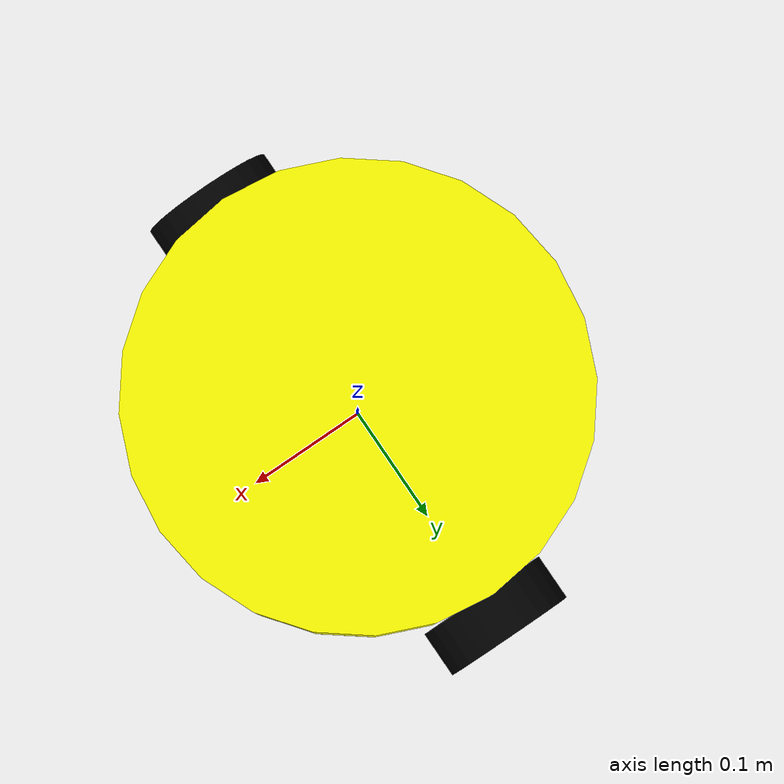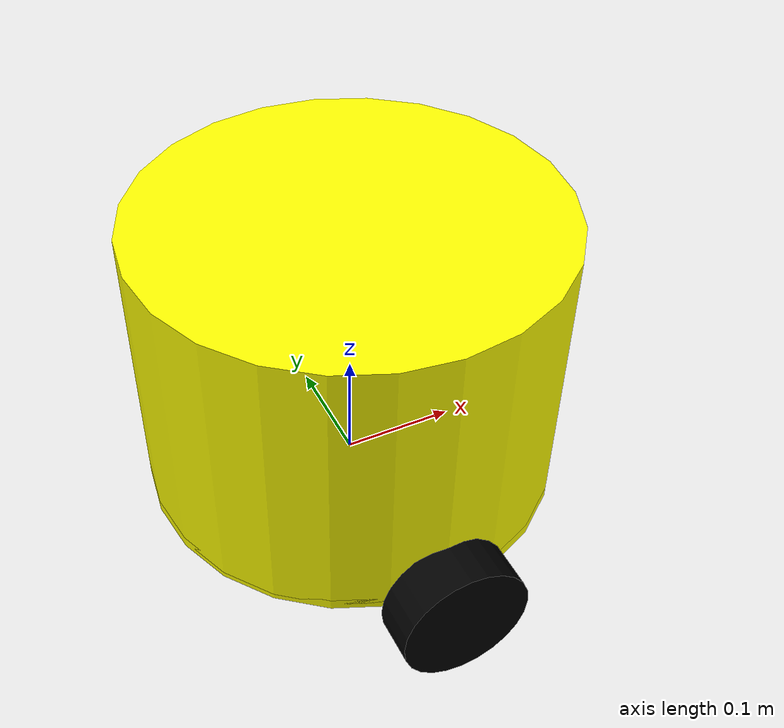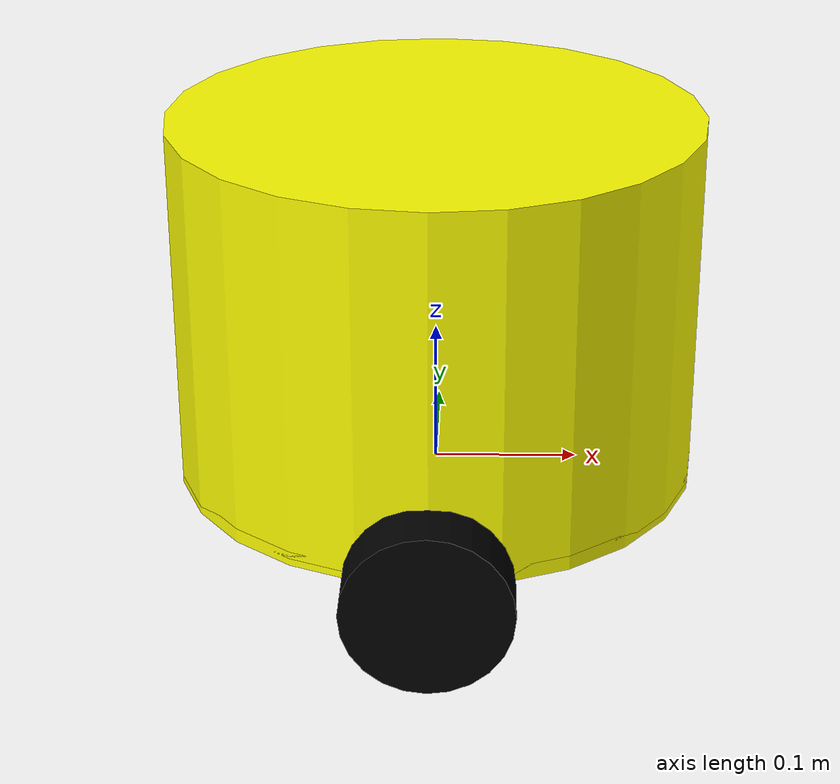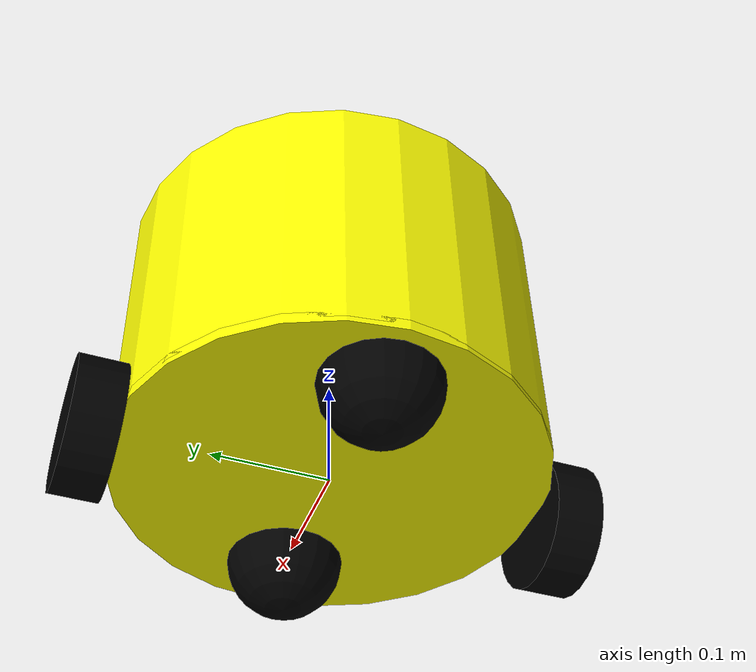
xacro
<?xml version="1.0"?>
<robot name="robot_core" xmlns:xacro="http://www.ros.org/wiki/xacro">

  <!-- Include inertial macros -->
  <!-- Ensure that inertial_macros.xacro is present and correctly defined -->
  <xacro:include filename="inertial_macros.xacro"/>

  <!-- Define colors -->
  <material name="yellow">
    <color rgba="1 1 0 1"/>
  </material>
  <material name="black">
    <color rgba="0 0 0 1"/>
  </material>

  <!-- Define the base link -->
  <link name="base_link">
    <visual>
      <geometry>
        <cylinder radius="0.1815" length="0.01"/>
      </geometry>
      <material name="yellow"/>
      <origin xyz="0 0 0.005" rpy="0 0 0"/>
    </visual>
    <collision>
      <geometry>
        <cylinder radius="0.1815" length="0.01"/>
      </geometry>
      <origin xyz="0 0 0.005" rpy="0 0 0"/>
    </collision>
    <inertial>
      <mass value="1"/>
      <inertia ixx="0.001" ixy="0" ixz="0" iyy="0.001" iyz="0" izz="0.001"/>
    </inertial>
  </link>
  <gazebo reference="base_link">
    <material>Gazebo/Yellow</material>
  </gazebo>

  <!-- Define the chassis link -->
  <link name="chassis_link">
    <visual>
      <geometry>
        <cylinder radius="0.1815" length="0.25"/>
      </geometry>
      <material name="yellow"/>
      <origin xyz="0 0 0.125" rpy="0 0 0"/>
    </visual>
    <collision>
      <geometry>
        <cylinder radius="0.1815" length="0.25"/>
      </geometry>
      <origin xyz="0 0 0.125" rpy="0 0 0"/>
    </collision>
    <inertial>
      <mass value="5"/>
      <inertia ixx="0.015" ixy="0" ixz="0" iyy="0.015" iyz="0" izz="0.015"/>
    </inertial>
  </link>
  <gazebo reference="chassis_link">
    <material>Gazebo/Yellow</material>
  </gazebo>

  <!-- Joint between base_link and chassis_link -->
  <joint name="base_to_chassis" type="fixed">
    <parent link="base_link"/>
    <child link="chassis_link"/>
    <origin xyz="0 0 0.005" rpy="0 0 0"/>
  </joint>

  <!-- Left wheel -->
  <joint name="left_wheel_joint" type="continuous">
    <parent link="base_link"/>
    <child link="left_wheel"/>
    <origin xyz="0 0.198 0" rpy="-${pi/2}  0 0"/>
    <axis xyz="0 0 1"/>
  </joint>

  <link name="left_wheel">
    <visual>
      <geometry>
        <cylinder radius="0.056" length="0.04"/>
      </geometry>
      <material name="black"/>
    </visual>
    <collision>
      <geometry>
        <cylinder radius="0.056" length="0.04"/>
      </geometry>
    </collision>
    <inertial>
      <mass value="0.1"/>
      <inertia ixx="0.0001" ixy="0" ixz="0" iyy="0.0001" iyz="0" izz="0.0001"/>
    </inertial>
  </link>
  <gazebo reference="left_wheel">
    <material>Gazebo/Black</material>
    <mu1>0.2</mu1>
    <mu2>0.2</mu2>
    <damping>0.01</damping>
  </gazebo>

  <!-- Right wheel -->
  <joint name="right_wheel_joint" type="continuous">
    <parent link="base_link"/>
    <child link="right_wheel"/>
    <origin xyz="0 -0.198 0" rpy="${pi/2} 0 0"/>
    <axis xyz="0 0 -1"/>
  </joint>

  <link name="right_wheel">
    <visual>
      <geometry>
        <cylinder radius="0.056" length="0.04"/>
      </geometry>
      <material name="black"/>
    </visual>
    <collision>
      <geometry>
        <cylinder radius="0.056" length="0.04"/>
      </geometry>
    </collision>
    <inertial>
      <mass value="0.1"/>
      <inertia ixx="0.0001" ixy="0" ixz="0" iyy="0.0001" iyz="0" izz="0.0001"/>
    </inertial>
  </link>
  <gazebo reference="right_wheel">
    <material>Gazebo/Black</material>
    <mu1>0.2</mu1>
    <mu2>0.2</mu2>
    <damping>0.01</damping>
  </gazebo>

  <!-- Caster wheel front -->
  <joint name="caster_wheel_joint_front" type="fixed">
    <parent link="base_link"/>
    <child link="caster_wheel_front"/>
    <origin xyz="0.12 0 0"/>
  </joint>

  <link name="caster_wheel_front">
    <visual>
      <geometry>
        <sphere radius="0.05"/>
      </geometry>
      <material name="black"/>
    </visual>
    <collision>
      <geometry>
        <sphere radius="0.05"/>
      </geometry>
    </collision>
    <inertial>
      <mass value="0.1"/>
      <inertia ixx="0.0001" ixy="0" ixz="0" iyy="0.0001" iyz="0" izz="0.0001"/>
    </inertial>
  </link>
  <gazebo reference="caster_wheel_front">
    <material>Gazebo/Black</material>
    <mu1>0.01</mu1>
    <mu2>0.01</mu2>
    <damping>0.01</damping>
  </gazebo>

  <!-- Caster wheel back -->
  <joint name="caster_wheel_joint_back" type="fixed">
    <parent link="base_link"/>
    <child link="caster_wheel_back"/>
    <origin xyz="-0.12 0 0"/>
  </joint>

  <link name="caster_wheel_back">
    <visual>
      <geometry>
        <sphere radius="0.05"/>
      </geometry>
      <material name="black"/>
    </visual>
    <collision>
      <geometry>
        <sphere radius="0.05"/>
      </geometry>
    </collision>
    <inertial>
      <mass value="0.1"/>
      <inertia ixx="0.0001" ixy="0" ixz="0" iyy="0.0001" iyz="0" izz="0.0001"/>
    </inertial>
  </link>
  <gazebo reference="caster_wheel_back">
    <material>Gazebo/Black</material>
    <mu1>0.01</mu1>
    <mu2>0.01</mu2>
    <damping>0.01</damping>
  </gazebo>

</robot>
